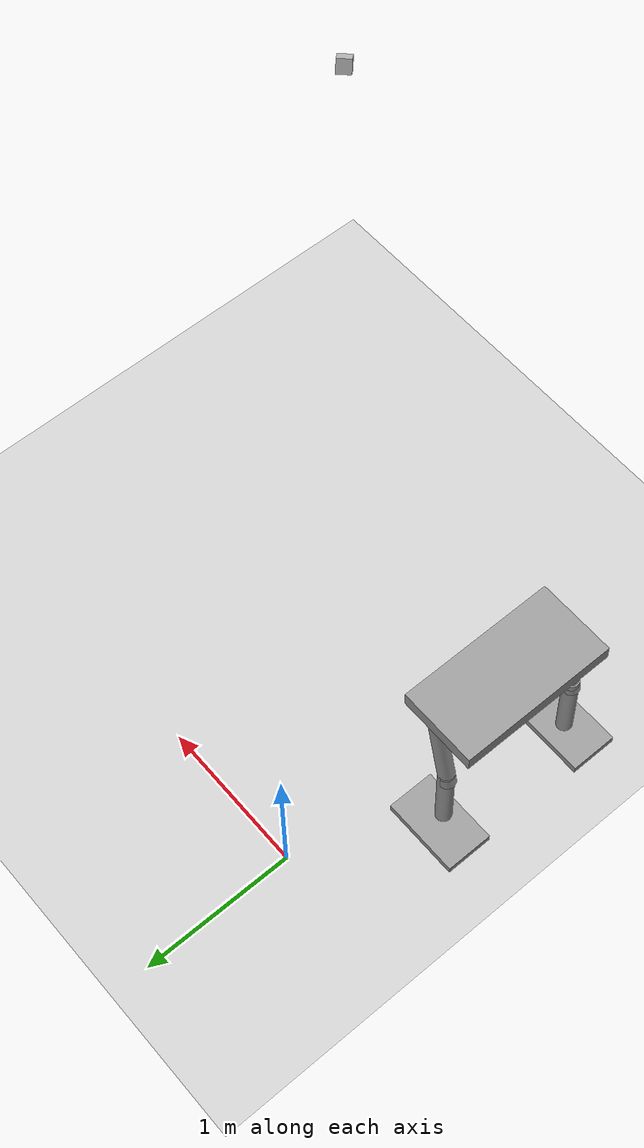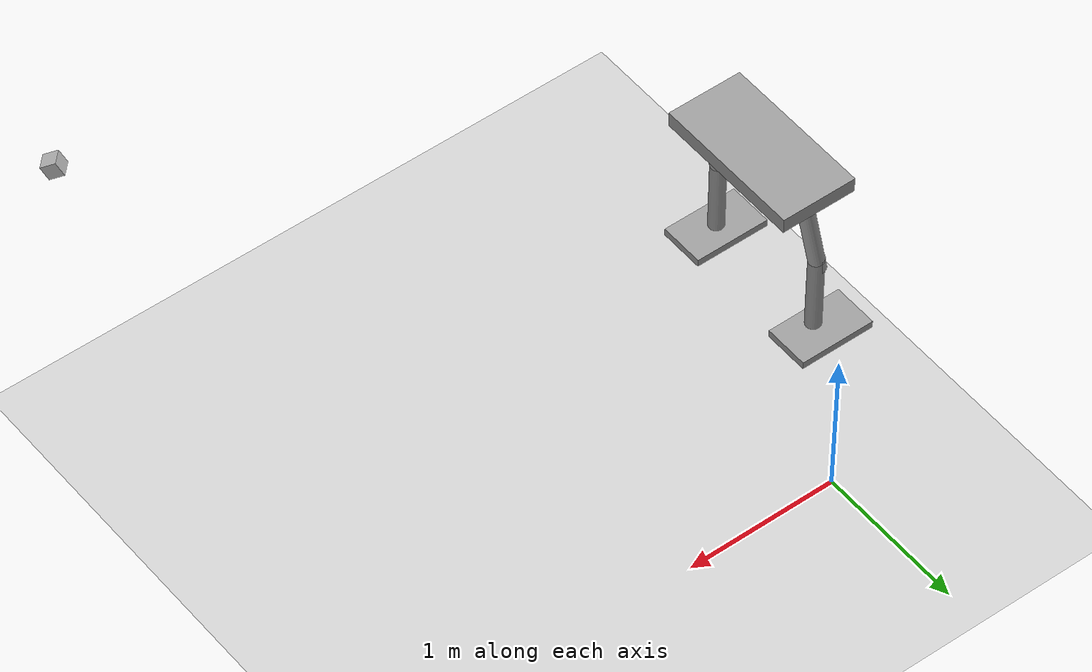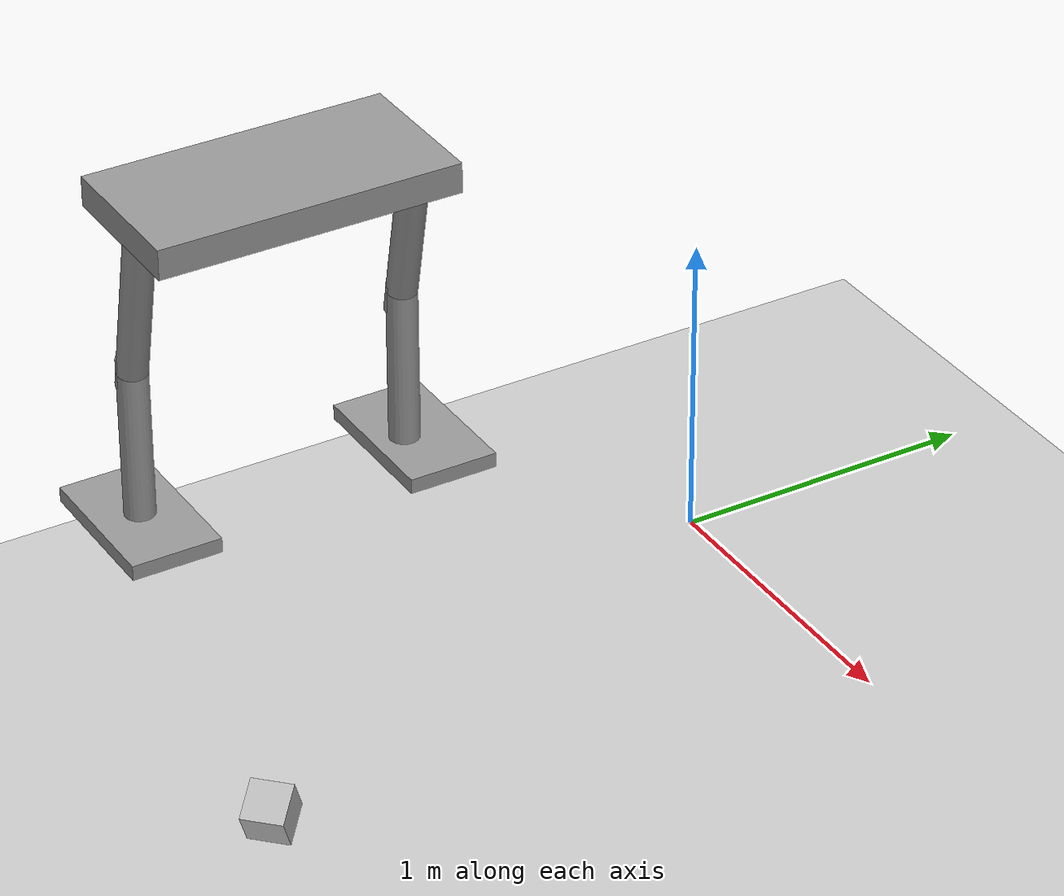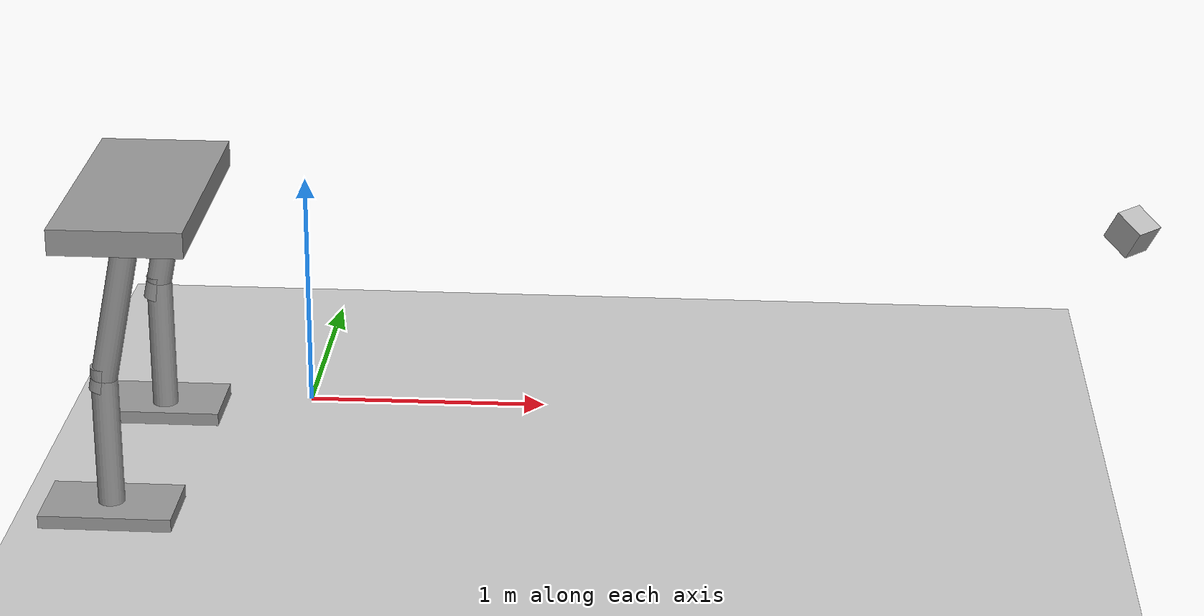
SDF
<sdf version="1.7">
 <world name="digital_twin_world">
  <include><uri>model://sun</uri></include>
  <include><uri>model://ground_plane</uri></include>
  <physics name="ode_physics" type="ode">
   <gravity>0 0 -9.8</gravity>
   <max_step_size>0.001</max_step_size>
   <real_time_factor>1.0</real_time_factor>
   <real_time_update_rate>1000.0</real_time_update_rate>
   <ode>
    <solver><type>quick</type><iters>10</iters><sor>1.3</sor></solver>
    <constraints>
     <cfm>0.0</cfm>
     <erp>0.2</erp>
     <contact_max_correcting_vel>100.0</contact_max_correcting_vel>
     <contact_surface_layer>0.001</contact_surface_layer>
    </constraints>
   </ode>
  </physics>
  <include><uri>model://humanoid_robot</uri><pose>0 0 1.0 0 0 0</pose></include>
  <model name="observer_camera">
   <static>true</static>
   <link name="link">
    <pose>3.0 -3.0 2.0 0.5 0 0.785</pose>
    <visual name="visual"><geometry><box><size>0.1 0.1 0.1</size></box></geometry></visual>
    <sensor name="camera" type="camera">
     <camera name="head">
      <horizontal_fov>1.047</horizontal_fov>
      <image><width>640</width><height>480</height></image>
      <clip><near>0.1</near><far>100</far></clip>
     </camera>
     <always_on>1</always_on>
     <update_rate>30</update_rate>
     <visualize>true</visualize>
    </sensor>
   </link>
  </model>
  <light name="key_light" type="directional">
   <pose>0 0 10 0 0 0</pose>
   <diffuse>0.8 0.8 0.8 1</diffuse>
   <specular>0.2 0.2 0.2 1</specular>
   <attenuation><range>1000</range></attenuation>
   <direction>-0.5 -0.1 -0.9</direction>
  </light>
 </world>
</sdf>

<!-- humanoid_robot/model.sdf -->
<sdf version='1.6'>
  <model name='humanoid_robot'>
    <link name='link_0'>
      <pose frame=''>-0.429033 -1.21064 0.361062 0 -0 0</pose>
      <inertial>
        <mass>1</mass>
        <inertia>
          <ixx>0.166667</ixx>
          <ixy>0</ixy>
          <ixz>0</ixz>
          <iyy>0.166667</iyy>
          <iyz>0</iyz>
          <izz>0.166667</izz>
        </inertia>
        <pose frame=''>0 0 0 0 -0 0</pose>
      </inertial>
      <gravity>1</gravity>
      <self_collide>0</self_collide>
      <kinematic>0</kinematic>
      <visual name='visual'>
        <pose frame=''>0 0 0 0 -0 0</pose>
        <geometry>
          <box>
            <size>0.5 1 0.1</size>
          </box>
        </geometry>
        <material>
          <lighting>1</lighting>
          <script>
            <uri>file://media/materials/scripts/gazebo.material</uri>
            <name>Gazebo/Grey</name>
          </script>
          <shader type='pixel'>
            <normal_map>__default__</normal_map>
          </shader>
          <ambient>0.3 0.3 0.3 1</ambient>
          <diffuse>0.7 0.7 0.7 1</diffuse>
          <specular>0.01 0.01 0.01 1</specular>
          <emissive>0 0 0 1</emissive>
        </material>
        <transparency>0</transparency>
        <cast_shadows>1</cast_shadows>
      </visual>
      <collision name='collision'>
        <laser_retro>0</laser_retro>
        <max_contacts>10</max_contacts>
        <pose frame=''>0 0 0 0 -0 0</pose>
        <geometry>
          <box>
            <size>0.5 1 0.1</size>
          </box>
        </geometry>
        <surface>
          <friction>
            <ode>
              <mu>1</mu>
              <mu2>1</mu2>
              <fdir1>0 0 0</fdir1>
              <slip1>0</slip1>
              <slip2>0</slip2>
            </ode>
            <torsional>
              <coefficient>1</coefficient>
              <patch_radius>0</patch_radius>
              <surface_radius>0</surface_radius>
              <use_patch_radius>1</use_patch_radius>
              <ode>
                <slip>0</slip>
              </ode>
            </torsional>
          </friction>
          <bounce>
            <restitution_coefficient>0</restitution_coefficient>
            <threshold>1e+06</threshold>
          </bounce>
          <contact>
            <collide_without_contact>0</collide_without_contact>
            <collide_without_contact_bitmask>1</collide_without_contact_bitmask>
            <collide_bitmask>1</collide_bitmask>
            <ode>
              <soft_cfm>0</soft_cfm>
              <soft_erp>0.2</soft_erp>
              <kp>1e+13</kp>
              <kd>1</kd>
              <max_vel>0.01</max_vel>
              <min_depth>0</min_depth>
            </ode>
            <bullet>
              <split_impulse>1</split_impulse>
              <split_impulse_penetration_threshold>-0.01</split_impulse_penetration_threshold>
              <soft_cfm>0</soft_cfm>
              <soft_erp>0.2</soft_erp>
              <kp>1e+13</kp>
              <kd>1</kd>
            </bullet>
          </contact>
        </surface>
      </collision>
    </link>
    <link name='link_1'>
      <pose frame=''>-0.494032 -0.715644 -0.71443 0 -0 0</pose>
      <inertial>
        <mass>1</mass>
        <inertia>
          <ixx>0.166667</ixx>
          <ixy>0</ixy>
          <ixz>0</ixz>
          <iyy>0.166667</iyy>
          <iyz>0</iyz>
          <izz>0.166667</izz>
        </inertia>
        <pose frame=''>0 0 0 0 -0 0</pose>
      </inertial>
      <gravity>1</gravity>
      <self_collide>0</self_collide>
      <kinematic>0</kinematic>
      <visual name='visual'>
        <pose frame=''>0 0 0 0 -0 0</pose>
        <geometry>
          <box>
            <size>0.5 0.3 0.05</size>
          </box>
        </geometry>
        <material>
          <lighting>1</lighting>
          <script>
            <uri>file://media/materials/scripts/gazebo.material</uri>
            <name>Gazebo/Grey</name>
          </script>
          <shader type='pixel'>
            <normal_map>__default__</normal_map>
          </shader>
          <ambient>0.3 0.3 0.3 1</ambient>
          <diffuse>0.7 0.7 0.7 1</diffuse>
          <specular>0.01 0.01 0.01 1</specular>
          <emissive>0 0 0 1</emissive>
        </material>
        <transparency>0</transparency>
        <cast_shadows>1</cast_shadows>
      </visual>
      <collision name='collision'>
        <laser_retro>0</laser_retro>
        <max_contacts>10</max_contacts>
        <pose frame=''>0 0 0 0 -0 0</pose>
        <geometry>
          <box>
            <size>0.5 0.3 0.05</size>
          </box>
        </geometry>
        <surface>
          <friction>
            <ode>
              <mu>1</mu>
              <mu2>1</mu2>
              <fdir1>0 0 0</fdir1>
              <slip1>0</slip1>
              <slip2>0</slip2>
            </ode>
            <torsional>
              <coefficient>1</coefficient>
              <patch_radius>0</patch_radius>
              <surface_radius>0</surface_radius>
              <use_patch_radius>1</use_patch_radius>
              <ode>
                <slip>0</slip>
              </ode>
            </torsional>
          </friction>
          <bounce>
            <restitution_coefficient>0</restitution_coefficient>
            <threshold>1e+06</threshold>
          </bounce>
          <contact>
            <collide_without_contact>0</collide_without_contact>
            <collide_without_contact_bitmask>1</collide_without_contact_bitmask>
            <collide_bitmask>1</collide_bitmask>
            <ode>
              <soft_cfm>0</soft_cfm>
              <soft_erp>0.2</soft_erp>
              <kp>1e+13</kp>
              <kd>1</kd>
              <max_vel>0.01</max_vel>
              <min_depth>0</min_depth>
            </ode>
            <bullet>
              <split_impulse>1</split_impulse>
              <split_impulse_penetration_threshold>-0.01</split_impulse_penetration_threshold>
              <soft_cfm>0</soft_cfm>
              <soft_erp>0.2</soft_erp>
              <kp>1e+13</kp>
              <kd>1</kd>
            </bullet>
          </contact>
        </surface>
      </collision>
    </link>
    <link name='link_1_clone'>
      <pose frame=''>-0.50671 -1.66064 -0.71443 0 -0 0</pose>
      <inertial>
        <mass>1</mass>
        <inertia>
          <ixx>0.166667</ixx>
          <ixy>0</ixy>
          <ixz>0</ixz>
          <iyy>0.166667</iyy>
          <iyz>0</iyz>
          <izz>0.166667</izz>
        </inertia>
        <pose frame=''>0 0 0 0 -0 0</pose>
      </inertial>
      <self_collide>0</self_collide>
      <kinematic>0</kinematic>
      <visual name='visual'>
        <pose frame=''>0 0 0 0 -0 0</pose>
        <geometry>
          <box>
            <size>0.5 0.3 0.05</size>
          </box>
        </geometry>
        <material>
          <lighting>1</lighting>
          <script>
            <uri>file://media/materials/scripts/gazebo.material</uri>
            <name>Gazebo/Grey</name>
          </script>
          <shader type='pixel'>
            <normal_map>__default__</normal_map>
          </shader>
          <ambient>0.3 0.3 0.3 1</ambient>
          <diffuse>0.7 0.7 0.7 1</diffuse>
          <specular>0.01 0.01 0.01 1</specular>
          <emissive>0 0 0 1</emissive>
        </material>
        <transparency>0</transparency>
        <cast_shadows>1</cast_shadows>
      </visual>
      <collision name='collision'>
        <laser_retro>0</laser_retro>
        <max_contacts>10</max_contacts>
        <pose frame=''>0 0 0 0 -0 0</pose>
        <geometry>
          <box>
            <size>0.5 0.3 0.05</size>
          </box>
        </geometry>
        <surface>
          <friction>
            <ode>
              <mu>1</mu>
              <mu2>1</mu2>
              <fdir1>0 0 0</fdir1>
              <slip1>0</slip1>
              <slip2>0</slip2>
            </ode>
            <torsional>
              <coefficient>1</coefficient>
              <patch_radius>0</patch_radius>
              <surface_radius>0</surface_radius>
              <use_patch_radius>1</use_patch_radius>
              <ode>
                <slip>0</slip>
              </ode>
            </torsional>
          </friction>
          <bounce>
            <restitution_coefficient>0</restitution_coefficient>
            <threshold>1e+06</threshold>
          </bounce>
          <contact>
            <collide_without_contact>0</collide_without_contact>
            <collide_without_contact_bitmask>1</collide_without_contact_bitmask>
            <collide_bitmask>1</collide_bitmask>
            <ode>
              <soft_cfm>0</soft_cfm>
              <soft_erp>0.2</soft_erp>
              <kp>1e+13</kp>
              <kd>1</kd>
              <max_vel>0.01</max_vel>
              <min_depth>0</min_depth>
            </ode>
            <bullet>
              <split_impulse>1</split_impulse>
              <split_impulse_penetration_threshold>-0.01</split_impulse_penetration_threshold>
              <soft_cfm>0</soft_cfm>
              <soft_erp>0.2</soft_erp>
              <kp>1e+13</kp>
              <kd>1</kd>
            </bullet>
          </contact>
        </surface>
      </collision>
    </link>
    <link name='link_2'>
      <pose frame=''>-0.474033 -0.760644 -0.43943 0 -0 0</pose>
      <inertial>
        <mass>1</mass>
        <inertia>
          <ixx>0.145833</ixx>
          <ixy>0</ixy>
          <ixz>0</ixz>
          <iyy>0.145833</iyy>
          <iyz>0</iyz>
          <izz>0.125</izz>
        </inertia>
        <pose frame=''>0 0 0 0 -0 0</pose>
      </inertial>
      <gravity>1</gravity>
      <self_collide>0</self_collide>
      <kinematic>0</kinematic>
      <visual name='visual'>
        <pose frame=''>0 0 0 0 -0 0</pose>
        <geometry>
          <cylinder>
            <radius>0.05</radius>
            <length>0.6</length>
          </cylinder>
        </geometry>
        <material>
          <lighting>1</lighting>
          <script>
            <uri>file://media/materials/scripts/gazebo.material</uri>
            <name>Gazebo/Grey</name>
          </script>
          <shader type='pixel'>
            <normal_map>__default__</normal_map>
          </shader>
          <ambient>0.3 0.3 0.3 1</ambient>
          <diffuse>0.7 0.7 0.7 1</diffuse>
          <specular>0.01 0.01 0.01 1</specular>
          <emissive>0 0 0 1</emissive>
        </material>
        <transparency>0</transparency>
        <cast_shadows>1</cast_shadows>
      </visual>
      <collision name='collision'>
        <laser_retro>0</laser_retro>
        <max_contacts>10</max_contacts>
        <pose frame=''>0 0 0 0 -0 0</pose>
        <geometry>
          <cylinder>
            <radius>0.05</radius>
            <length>0.6</length>
          </cylinder>
        </geometry>
        <surface>
          <friction>
            <ode>
              <mu>1</mu>
              <mu2>1</mu2>
              <fdir1>0 0 0</fdir1>
              <slip1>0</slip1>
              <slip2>0</slip2>
            </ode>
            <torsional>
              <coefficient>1</coefficient>
              <patch_radius>0</patch_radius>
              <surface_radius>0</surface_radius>
              <use_patch_radius>1</use_patch_radius>
              <ode>
                <slip>0</slip>
              </ode>
            </torsional>
          </friction>
          <bounce>
            <restitution_coefficient>0</restitution_coefficient>
            <threshold>1e+06</threshold>
          </bounce>
          <contact>
            <collide_without_contact>0</collide_without_contact>
            <collide_without_contact_bitmask>1</collide_without_contact_bitmask>
            <collide_bitmask>1</collide_bitmask>
            <ode>
              <soft_cfm>0</soft_cfm>
              <soft_erp>0.2</soft_erp>
              <kp>1e+13</kp>
              <kd>1</kd>
              <max_vel>0.01</max_vel>
              <min_depth>0</min_depth>
            </ode>
            <bullet>
              <split_impulse>1</split_impulse>
              <split_impulse_penetration_threshold>-0.01</split_impulse_penetration_threshold>
              <soft_cfm>0</soft_cfm>
              <soft_erp>0.2</soft_erp>
              <kp>1e+13</kp>
              <kd>1</kd>
            </bullet>
          </contact>
        </surface>
      </collision>
    </link>
    <link name='link_2_clone'>
      <pose frame=''>-0.429033 -0.760644 0.061062 0 0.2 0</pose>
      <inertial>
        <mass>1</mass>
        <inertia>
          <ixx>0.145833</ixx>
          <ixy>0</ixy>
          <ixz>0</ixz>
          <iyy>0.145833</iyy>
          <iyz>0</iyz>
          <izz>0.125</izz>
        </inertia>
        <pose frame=''>0 0 0 0 -0 0</pose>
      </inertial>
      <self_collide>0</self_collide>
      <kinematic>0</kinematic>
      <visual name='visual'>
        <pose frame=''>0 0 0 0 -0 0</pose>
        <geometry>
          <cylinder>
            <radius>0.05</radius>
            <length>0.6</length>
          </cylinder>
        </geometry>
        <material>
          <lighting>1</lighting>
          <script>
            <uri>file://media/materials/scripts/gazebo.material</uri>
            <name>Gazebo/Grey</name>
          </script>
          <shader type='pixel'>
            <normal_map>__default__</normal_map>
          </shader>
          <ambient>0.3 0.3 0.3 1</ambient>
          <diffuse>0.7 0.7 0.7 1</diffuse>
          <specular>0.01 0.01 0.01 1</specular>
          <emissive>0 0 0 1</emissive>
        </material>
        <transparency>0</transparency>
        <cast_shadows>1</cast_shadows>
      </visual>
      <collision name='collision'>
        <laser_retro>0</laser_retro>
        <max_contacts>10</max_contacts>
        <pose frame=''>0 0 0 0 -0 0</pose>
        <geometry>
          <cylinder>
            <radius>0.05</radius>
            <length>0.6</length>
          </cylinder>
        </geometry>
        <surface>
          <friction>
            <ode>
              <mu>1</mu>
              <mu2>1</mu2>
              <fdir1>0 0 0</fdir1>
              <slip1>0</slip1>
              <slip2>0</slip2>
            </ode>
            <torsional>
              <coefficient>1</coefficient>
              <patch_radius>0</patch_radius>
              <surface_radius>0</surface_radius>
              <use_patch_radius>1</use_patch_radius>
              <ode>
                <slip>0</slip>
              </ode>
            </torsional>
          </friction>
          <bounce>
            <restitution_coefficient>0</restitution_coefficient>
            <threshold>1e+06</threshold>
          </bounce>
          <contact>
            <collide_without_contact>0</collide_without_contact>
            <collide_without_contact_bitmask>1</collide_without_contact_bitmask>
            <collide_bitmask>1</collide_bitmask>
            <ode>
              <soft_cfm>0</soft_cfm>
              <soft_erp>0.2</soft_erp>
              <kp>1e+13</kp>
              <kd>1</kd>
              <max_vel>0.01</max_vel>
              <min_depth>0</min_depth>
            </ode>
            <bullet>
              <split_impulse>1</split_impulse>
              <split_impulse_penetration_threshold>-0.01</split_impulse_penetration_threshold>
              <soft_cfm>0</soft_cfm>
              <soft_erp>0.2</soft_erp>
              <kp>1e+13</kp>
              <kd>1</kd>
            </bullet>
          </contact>
        </surface>
      </collision>
    </link>
    <link name='link_2_clone_0'>
      <pose frame=''>-0.50671 -1.66064 -0.43943 0 -0 0</pose>
      <inertial>
        <mass>1</mass>
        <inertia>
          <ixx>0.145833</ixx>
          <ixy>0</ixy>
          <ixz>0</ixz>
          <iyy>0.145833</iyy>
          <iyz>0</iyz>
          <izz>0.125</izz>
        </inertia>
        <pose frame=''>0 0 0 0 -0 0</pose>
      </inertial>
      <self_collide>0</self_collide>
      <kinematic>0</kinematic>
      <visual name='visual'>
        <pose frame=''>0 0 0 0 -0 0</pose>
        <geometry>
          <cylinder>
            <radius>0.05</radius>
            <length>0.6</length>
          </cylinder>
        </geometry>
        <material>
          <lighting>1</lighting>
          <script>
            <uri>file://media/materials/scripts/gazebo.material</uri>
            <name>Gazebo/Grey</name>
          </script>
          <shader type='pixel'>
            <normal_map>__default__</normal_map>
          </shader>
          <ambient>0.3 0.3 0.3 1</ambient>
          <diffuse>0.7 0.7 0.7 1</diffuse>
          <specular>0.01 0.01 0.01 1</specular>
          <emissive>0 0 0 1</emissive>
        </material>
        <transparency>0</transparency>
        <cast_shadows>1</cast_shadows>
      </visual>
      <collision name='collision'>
        <laser_retro>0</laser_retro>
        <max_contacts>10</max_contacts>
        <pose frame=''>0 0 0 0 -0 0</pose>
        <geometry>
          <cylinder>
            <radius>0.05</radius>
            <length>0.6</length>
          </cylinder>
        </geometry>
        <surface>
          <friction>
            <ode>
              <mu>1</mu>
              <mu2>1</mu2>
              <fdir1>0 0 0</fdir1>
              <slip1>0</slip1>
              <slip2>0</slip2>
            </ode>
            <torsional>
              <coefficient>1</coefficient>
              <patch_radius>0</patch_radius>
              <surface_radius>0</surface_radius>
              <use_patch_radius>1</use_patch_radius>
              <ode>
                <slip>0</slip>
              </ode>
            </torsional>
          </friction>
          <bounce>
            <restitution_coefficient>0</restitution_coefficient>
            <threshold>1e+06</threshold>
          </bounce>
          <contact>
            <collide_without_contact>0</collide_without_contact>
            <collide_without_contact_bitmask>1</collide_without_contact_bitmask>
            <collide_bitmask>1</collide_bitmask>
            <ode>
              <soft_cfm>0</soft_cfm>
              <soft_erp>0.2</soft_erp>
              <kp>1e+13</kp>
              <kd>1</kd>
              <max_vel>0.01</max_vel>
              <min_depth>0</min_depth>
            </ode>
            <bullet>
              <split_impulse>1</split_impulse>
              <split_impulse_penetration_threshold>-0.01</split_impulse_penetration_threshold>
              <soft_cfm>0</soft_cfm>
              <soft_erp>0.2</soft_erp>
              <kp>1e+13</kp>
              <kd>1</kd>
            </bullet>
          </contact>
        </surface>
      </collision>
    </link>
    <link name='link_2_clone_0_clone'>
      <pose frame=''>-0.456711 -1.66064 0.06057 0 0.2 0</pose>
      <inertial>
        <mass>1</mass>
        <inertia>
          <ixx>0.145833</ixx>
          <ixy>0</ixy>
          <ixz>0</ixz>
          <iyy>0.145833</iyy>
          <iyz>0</iyz>
          <izz>0.125</izz>
        </inertia>
        <pose frame=''>0 0 0 0 -0 0</pose>
      </inertial>
      <self_collide>0</self_collide>
      <kinematic>0</kinematic>
      <visual name='visual'>
        <pose frame=''>0 0 0 0 -0 0</pose>
        <geometry>
          <cylinder>
            <radius>0.05</radius>
            <length>0.6</length>
          </cylinder>
        </geometry>
        <material>
          <lighting>1</lighting>
          <script>
            <uri>file://media/materials/scripts/gazebo.material</uri>
            <name>Gazebo/Grey</name>
          </script>
          <shader type='pixel'>
            <normal_map>__default__</normal_map>
          </shader>
          <ambient>0.3 0.3 0.3 1</ambient>
          <diffuse>0.7 0.7 0.7 1</diffuse>
          <specular>0.01 0.01 0.01 1</specular>
          <emissive>0 0 0 1</emissive>
        </material>
        <transparency>0</transparency>
        <cast_shadows>1</cast_shadows>
      </visual>
      <collision name='collision'>
        <laser_retro>0</laser_retro>
        <max_contacts>10</max_contacts>
        <pose frame=''>0 0 0 0 -0 0</pose>
        <geometry>
          <cylinder>
            <radius>0.05</radius>
            <length>0.6</length>
          </cylinder>
        </geometry>
        <surface>
          <friction>
            <ode>
              <mu>1</mu>
              <mu2>1</mu2>
              <fdir1>0 0 0</fdir1>
              <slip1>0</slip1>
              <slip2>0</slip2>
            </ode>
            <torsional>
              <coefficient>1</coefficient>
              <patch_radius>0</patch_radius>
              <surface_radius>0</surface_radius>
              <use_patch_radius>1</use_patch_radius>
              <ode>
                <slip>0</slip>
              </ode>
            </torsional>
          </friction>
          <bounce>
            <restitution_coefficient>0</restitution_coefficient>
            <threshold>1e+06</threshold>
          </bounce>
          <contact>
            <collide_without_contact>0</collide_without_contact>
            <collide_without_contact_bitmask>1</collide_without_contact_bitmask>
            <collide_bitmask>1</collide_bitmask>
            <ode>
              <soft_cfm>0</soft_cfm>
              <soft_erp>0.2</soft_erp>
              <kp>1e+13</kp>
              <kd>1</kd>
              <max_vel>0.01</max_vel>
              <min_depth>0</min_depth>
            </ode>
            <bullet>
              <split_impulse>1</split_impulse>
              <split_impulse_penetration_threshold>-0.01</split_impulse_penetration_threshold>
              <soft_cfm>0</soft_cfm>
              <soft_erp>0.2</soft_erp>
              <kp>1e+13</kp>
              <kd>1</kd>
            </bullet>
          </contact>
        </surface>
      </collision>
    </link>
    <joint name='link_0_JOINT_8' type='revolute'>
      <parent>link_0</parent>
      <child>link_2_clone</child>
      <pose frame=''>0 0 0 0 -0 0</pose>
      <axis>
        <xyz>1 0 0</xyz>
        <use_parent_model_frame>0</use_parent_model_frame>
        <limit>
          <lower>-1.79769e+308</lower>
          <upper>1.79769e+308</upper>
          <effort>-1</effort>
          <velocity>-1</velocity>
        </limit>
        <dynamics>
          <spring_reference>0</spring_reference>
          <spring_stiffness>0</spring_stiffness>
          <damping>0</damping>
        </dynamics>
      </axis>
      <physics>
        <ode>
          <limit>
            <cfm>0</cfm>
            <erp>0.2</erp>
          </limit>
          <suspension>
            <cfm>0</cfm>
            <erp>0.2</erp>
          </suspension>
        </ode>
      </physics>
    </joint>
    <joint name='link_1_JOINT_0' type='revolute'>
      <parent>link_1</parent>
      <child>link_2</child>
      <pose frame=''>0 0 0 0 -0 0</pose>
      <axis>
        <xyz>-0 -0 -1</xyz>
        <use_parent_model_frame>0</use_parent_model_frame>
        <limit>
          <lower>-1.79769e+308</lower>
          <upper>1.79769e+308</upper>
          <effort>-1</effort>
          <velocity>-1</velocity>
        </limit>
        <dynamics>
          <spring_reference>0</spring_reference>
          <spring_stiffness>0</spring_stiffness>
          <damping>0</damping>
        </dynamics>
      </axis>
      <physics>
        <ode>
          <limit>
            <cfm>0</cfm>
            <erp>0.2</erp>
          </limit>
          <suspension>
            <cfm>0</cfm>
            <erp>0.2</erp>
          </suspension>
        </ode>
      </physics>
    </joint>
    <joint name='link_1_clone_JOINT_3' type='revolute'>
      <parent>link_1_clone</parent>
      <child>link_2_clone_0</child>
      <pose frame=''>0 0 0 0 -0 0</pose>
      <axis>
        <xyz>-0 -0 -1</xyz>
        <use_parent_model_frame>0</use_parent_model_frame>
        <limit>
          <lower>-1.79769e+308</lower>
          <upper>1.79769e+308</upper>
          <effort>-1</effort>
          <velocity>-1</velocity>
        </limit>
        <dynamics>
          <spring_reference>0</spring_reference>
          <spring_stiffness>0</spring_stiffness>
          <damping>0</damping>
        </dynamics>
      </axis>
      <physics>
        <ode>
          <limit>
            <cfm>0</cfm>
            <erp>0.2</erp>
          </limit>
          <suspension>
            <cfm>0</cfm>
            <erp>0.2</erp>
          </suspension>
        </ode>
      </physics>
    </joint>
    <joint name='link_2_JOINT_10' type='revolute'>
      <parent>link_2</parent>
      <child>link_1</child>
      <pose frame=''>0 0 0 0 -0 0</pose>
      <axis>
        <xyz>1 0 0</xyz>
        <use_parent_model_frame>0</use_parent_model_frame>
        <limit>
          <lower>-1.79769e+308</lower>
          <upper>1.79769e+308</upper>
          <effort>-1</effort>
          <velocity>-1</velocity>
        </limit>
        <dynamics>
          <spring_reference>0</spring_reference>
          <spring_stiffness>0</spring_stiffness>
          <damping>0</damping>
        </dynamics>
      </axis>
      <physics>
        <ode>
          <limit>
            <cfm>0</cfm>
            <erp>0.2</erp>
          </limit>
          <suspension>
            <cfm>0</cfm>
            <erp>0.2</erp>
          </suspension>
        </ode>
      </physics>
    </joint>
    <joint name='link_2_JOINT_2' type='revolute'>
      <parent>link_2</parent>
      <child>link_2_clone</child>
      <pose frame=''>0 0 0 0 -0 0</pose>
      <axis>
        <xyz>0 0 -1</xyz>
        <use_parent_model_frame>0</use_parent_model_frame>
        <limit>
          <lower>-1.79769e+308</lower>
          <upper>1.79769e+308</upper>
          <effort>-1</effort>
          <velocity>-1</velocity>
        </limit>
        <dynamics>
          <spring_reference>0</spring_reference>
          <spring_stiffness>0</spring_stiffness>
          <damping>0</damping>
          <friction>0</friction>
        </dynamics>
      </axis>
      <physics>
        <ode>
          <limit>
            <cfm>0</cfm>
            <erp>0.2</erp>
          </limit>
          <suspension>
            <cfm>0</cfm>
            <erp>0.2</erp>
          </suspension>
        </ode>
      </physics>
    </joint>
    <joint name='link_2_clone_0_JOINT_4' type='revolute'>
      <parent>link_2_clone_0</parent>
      <child>link_2_clone_0_clone</child>
      <pose frame=''>0 0 0 0 -0 0</pose>
      <axis>
        <xyz>-0 -0 -1</xyz>
        <use_parent_model_frame>0</use_parent_model_frame>
        <limit>
          <lower>-1.79769e+308</lower>
          <upper>1.79769e+308</upper>
          <effort>-1</effort>
          <velocity>-1</velocity>
        </limit>
        <dynamics>
          <spring_reference>0</spring_reference>
          <spring_stiffness>0</spring_stiffness>
          <damping>0</damping>
        </dynamics>
      </axis>
      <physics>
        <ode>
          <limit>
            <cfm>0</cfm>
            <erp>0.2</erp>
          </limit>
          <suspension>
            <cfm>0</cfm>
            <erp>0.2</erp>
          </suspension>
        </ode>
      </physics>
    </joint>
    <joint name='link_2_clone_0_clone_JOINT_5' type='revolute'>
      <parent>link_2_clone_0_clone</parent>
      <child>link_0</child>
      <pose frame=''>0 0 0 0 -0 0</pose>
      <axis>
        <xyz>-0 -0 -1</xyz>
        <use_parent_model_frame>0</use_parent_model_frame>
        <limit>
          <lower>-1.79769e+308</lower>
          <upper>1.79769e+308</upper>
          <effort>-1</effort>
          <velocity>-1</velocity>
        </limit>
        <dynamics>
          <spring_reference>0</spring_reference>
          <spring_stiffness>0</spring_stiffness>
          <damping>0</damping>
        </dynamics>
      </axis>
      <physics>
        <ode>
          <limit>
            <cfm>0</cfm>
            <erp>0.2</erp>
          </limit>
          <suspension>
            <cfm>0</cfm>
            <erp>0.2</erp>
          </suspension>
        </ode>
      </physics>
    </joint>
    <joint name='link_2_clone_JOINT_9' type='revolute'>
      <parent>link_2_clone</parent>
      <child>link_2</child>
      <pose frame=''>0 0 0 0 -0 0</pose>
      <axis>
        <xyz>1 0 0</xyz>
        <use_parent_model_frame>0</use_parent_model_frame>
        <limit>
          <lower>-1.79769e+308</lower>
          <upper>1.79769e+308</upper>
          <effort>-1</effort>
          <velocity>-1</velocity>
        </limit>
        <dynamics>
          <spring_reference>0</spring_reference>
          <spring_stiffness>0</spring_stiffness>
          <damping>0</damping>
        </dynamics>
      </axis>
      <physics>
        <ode>
          <limit>
            <cfm>0</cfm>
            <erp>0.2</erp>
          </limit>
          <suspension>
            <cfm>0</cfm>
            <erp>0.2</erp>
          </suspension>
        </ode>
      </physics>
    </joint>
    <static>0</static>
    <allow_auto_disable>1</allow_auto_disable>
  </model>
</sdf>
